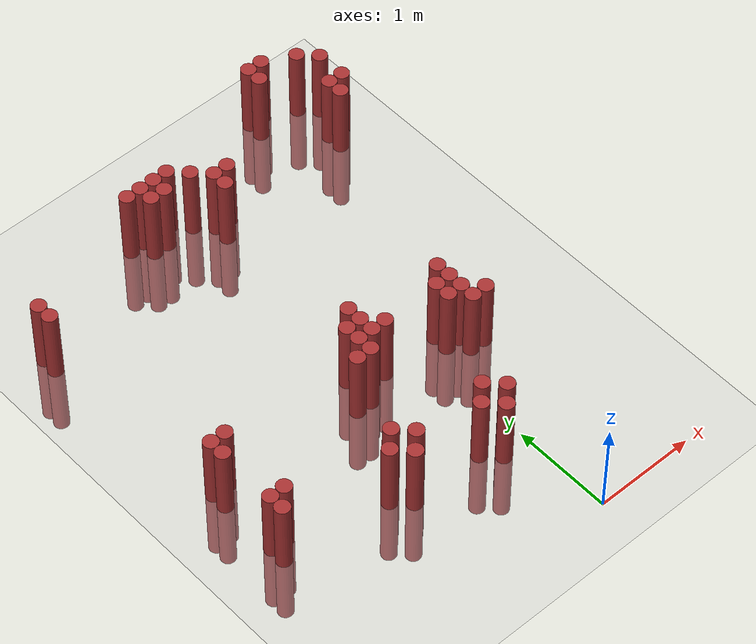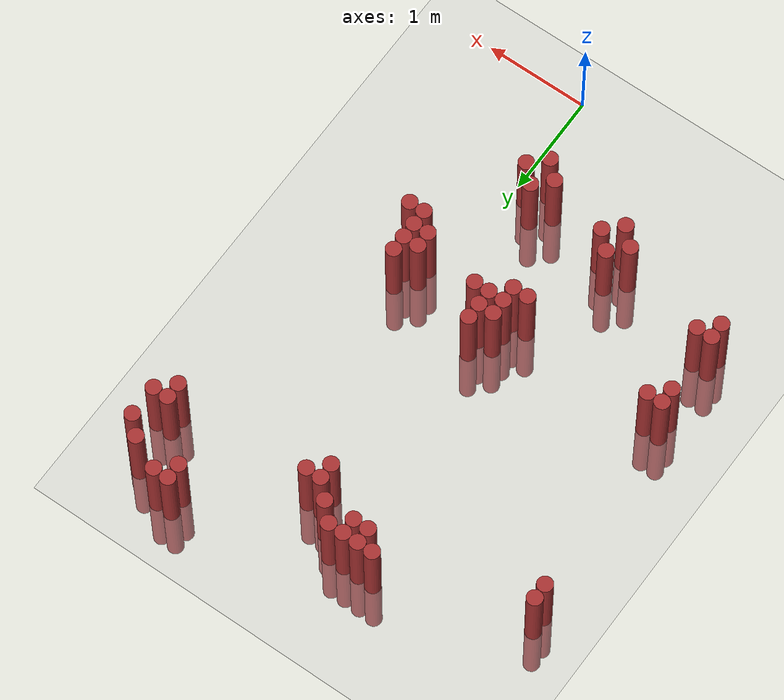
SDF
<sdf version="1.6">
 <world name="default">
  <model name="ground_plane">
   <static>1</static>
   <link name="link">
    <collision name="collision">
     <geometry><plane><normal>0 0 1</normal><size>100 100</size></plane></geometry>
     <surface><friction><ode><mu>100</mu><mu2>50</mu2></ode></friction></surface>
    </collision>
    <visual name="visual">
     <cast_shadows>0</cast_shadows>
     <geometry><plane><normal>0 0 1</normal><size>100 100</size></plane></geometry>
     <material>
      <script><uri>file://media/materials/scripts/gazebo.material</uri><name>Gazebo/Grey</name></script>
     </material>
    </visual>
   </link>
  </model>
  <model name="unit_cylinder_298">
   <static>1</static>
   <pose>-2.525000 4.225000 0.000000 0.000000 0.000000 0.000000</pose>
   <link name="link">
    <inertial>
     <mass>1</mass>
     <inertia><ixx>0.145833</ixx><ixy>0</ixy><ixz>0</ixz><iyy>0.145833</iyy><iyz>0</iyz><izz>0.125</izz></inertia>
    </inertial>
    <collision name="collision">
     <geometry><cylinder><radius>0.075000</radius><length>1.5</length></cylinder></geometry>
    </collision>
    <visual name="visual">
     <geometry><cylinder><radius>0.075000</radius><length>1.5</length></cylinder></geometry>
     <material>
      <ambient>0.648000 0.192000 0.192000 1</ambient>
      <diffuse>0.648000 0.192000 0.192000 1</diffuse>
     </material>
     <material>
      <script><name>Gazebo/Grey</name><uri>file://media/materials/scripts/gazebo.material</uri></script>
     </material>
    </visual>
   </link>
  </model>
  <model name="unit_cylinder_299">
   <static>1</static>
   <pose>-2.525000 4.375000 0.000000 0.000000 0.000000 0.000000</pose>
   <link name="link">
    <inertial>
     <mass>1</mass>
     <inertia><ixx>0.145833</ixx><ixy>0</ixy><ixz>0</ixz><iyy>0.145833</iyy><iyz>0</iyz><izz>0.125</izz></inertia>
    </inertial>
    <collision name="collision">
     <geometry><cylinder><radius>0.075000</radius><length>1.5</length></cylinder></geometry>
    </collision>
    <visual name="visual">
     <geometry><cylinder><radius>0.075000</radius><length>1.5</length></cylinder></geometry>
     <material>
      <ambient>0.648000 0.192000 0.192000 1</ambient>
      <diffuse>0.648000 0.192000 0.192000 1</diffuse>
     </material>
     <material>
      <script><name>Gazebo/Grey</name><uri>file://media/materials/scripts/gazebo.material</uri></script>
     </material>
    </visual>
   </link>
  </model>
  <model name="unit_cylinder_304">
   <static>1</static>
   <pose>-2.375000 1.375000 0.000000 0.000000 0.000000 0.000000</pose>
   <link name="link">
    <inertial>
     <mass>1</mass>
     <inertia><ixx>0.145833</ixx><ixy>0</ixy><ixz>0</ixz><iyy>0.145833</iyy><iyz>0</iyz><izz>0.125</izz></inertia>
    </inertial>
    <collision name="collision">
     <geometry><cylinder><radius>0.075000</radius><length>1.5</length></cylinder></geometry>
    </collision>
    <visual name="visual">
     <geometry><cylinder><radius>0.075000</radius><length>1.5</length></cylinder></geometry>
     <material>
      <ambient>0.648000 0.192000 0.192000 1</ambient>
      <diffuse>0.648000 0.192000 0.192000 1</diffuse>
     </material>
     <material>
      <script><name>Gazebo/Grey</name><uri>file://media/materials/scripts/gazebo.material</uri></script>
     </material>
    </visual>
   </link>
  </model>
  <model name="unit_cylinder_305">
   <static>1</static>
   <pose>-2.375000 1.525000 0.000000 0.000000 0.000000 0.000000</pose>
   <link name="link">
    <inertial>
     <mass>1</mass>
     <inertia><ixx>0.145833</ixx><ixy>0</ixy><ixz>0</ixz><iyy>0.145833</iyy><iyz>0</iyz><izz>0.125</izz></inertia>
    </inertial>
    <collision name="collision">
     <geometry><cylinder><radius>0.075000</radius><length>1.5</length></cylinder></geometry>
    </collision>
    <visual name="visual">
     <geometry><cylinder><radius>0.075000</radius><length>1.5</length></cylinder></geometry>
     <material>
      <ambient>0.648000 0.192000 0.192000 1</ambient>
      <diffuse>0.648000 0.192000 0.192000 1</diffuse>
     </material>
     <material>
      <script><name>Gazebo/Grey</name><uri>file://media/materials/scripts/gazebo.material</uri></script>
     </material>
    </visual>
   </link>
  </model>
  <model name="unit_cylinder_306">
   <static>1</static>
   <pose>-2.375000 2.125000 0.000000 0.000000 0.000000 0.000000</pose>
   <link name="link">
    <inertial>
     <mass>1</mass>
     <inertia><ixx>0.145833</ixx><ixy>0</ixy><ixz>0</ixz><iyy>0.145833</iyy><iyz>0</iyz><izz>0.125</izz></inertia>
    </inertial>
    <collision name="collision">
     <geometry><cylinder><radius>0.075000</radius><length>1.5</length></cylinder></geometry>
    </collision>
    <visual name="visual">
     <geometry><cylinder><radius>0.075000</radius><length>1.5</length></cylinder></geometry>
     <material>
      <ambient>0.648000 0.192000 0.192000 1</ambient>
      <diffuse>0.648000 0.192000 0.192000 1</diffuse>
     </material>
     <material>
      <script><name>Gazebo/Grey</name><uri>file://media/materials/scripts/gazebo.material</uri></script>
     </material>
    </visual>
   </link>
  </model>
  <model name="unit_cylinder_307">
   <static>1</static>
   <pose>-2.375000 2.275000 0.000000 0.000000 0.000000 0.000000</pose>
   <link name="link">
    <inertial>
     <mass>1</mass>
     <inertia><ixx>0.145833</ixx><ixy>0</ixy><ixz>0</ixz><iyy>0.145833</iyy><iyz>0</iyz><izz>0.125</izz></inertia>
    </inertial>
    <collision name="collision">
     <geometry><cylinder><radius>0.075000</radius><length>1.5</length></cylinder></geometry>
    </collision>
    <visual name="visual">
     <geometry><cylinder><radius>0.075000</radius><length>1.5</length></cylinder></geometry>
     <material>
      <ambient>0.648000 0.192000 0.192000 1</ambient>
      <diffuse>0.648000 0.192000 0.192000 1</diffuse>
     </material>
     <material>
      <script><name>Gazebo/Grey</name><uri>file://media/materials/scripts/gazebo.material</uri></script>
     </material>
    </visual>
   </link>
  </model>
  <model name="unit_cylinder_311">
   <static>1</static>
   <pose>-2.225000 1.525000 0.000000 0.000000 0.000000 0.000000</pose>
   <link name="link">
    <inertial>
     <mass>1</mass>
     <inertia><ixx>0.145833</ixx><ixy>0</ixy><ixz>0</ixz><iyy>0.145833</iyy><iyz>0</iyz><izz>0.125</izz></inertia>
    </inertial>
    <collision name="collision">
     <geometry><cylinder><radius>0.075000</radius><length>1.5</length></cylinder></geometry>
    </collision>
    <visual name="visual">
     <geometry><cylinder><radius>0.075000</radius><length>1.5</length></cylinder></geometry>
     <material>
      <ambient>0.648000 0.192000 0.192000 1</ambient>
      <diffuse>0.648000 0.192000 0.192000 1</diffuse>
     </material>
     <material>
      <script><name>Gazebo/Grey</name><uri>file://media/materials/scripts/gazebo.material</uri></script>
     </material>
    </visual>
   </link>
  </model>
  <model name="unit_cylinder_312">
   <static>1</static>
   <pose>-2.225000 2.275000 0.000000 0.000000 0.000000 0.000000</pose>
   <link name="link">
    <inertial>
     <mass>1</mass>
     <inertia><ixx>0.145833</ixx><ixy>0</ixy><ixz>0</ixz><iyy>0.145833</iyy><iyz>0</iyz><izz>0.125</izz></inertia>
    </inertial>
    <collision name="collision">
     <geometry><cylinder><radius>0.075000</radius><length>1.5</length></cylinder></geometry>
    </collision>
    <visual name="visual">
     <geometry><cylinder><radius>0.075000</radius><length>1.5</length></cylinder></geometry>
     <material>
      <ambient>0.648000 0.192000 0.192000 1</ambient>
      <diffuse>0.648000 0.192000 0.192000 1</diffuse>
     </material>
     <material>
      <script><name>Gazebo/Grey</name><uri>file://media/materials/scripts/gazebo.material</uri></script>
     </material>
    </visual>
   </link>
  </model>
  <model name="unit_cylinder_321">
   <static>1</static>
   <pose>-1.325000 1.225000 0.000000 0.000000 0.000000 0.000000</pose>
   <link name="link">
    <inertial>
     <mass>1</mass>
     <inertia><ixx>0.145833</ixx><ixy>0</ixy><ixz>0</ixz><iyy>0.145833</iyy><iyz>0</iyz><izz>0.125</izz></inertia>
    </inertial>
    <collision name="collision">
     <geometry><cylinder><radius>0.075000</radius><length>1.5</length></cylinder></geometry>
    </collision>
    <visual name="visual">
     <geometry><cylinder><radius>0.075000</radius><length>1.5</length></cylinder></geometry>
     <material>
      <ambient>0.648000 0.192000 0.192000 1</ambient>
      <diffuse>0.648000 0.192000 0.192000 1</diffuse>
     </material>
     <material>
      <script><name>Gazebo/Grey</name><uri>file://media/materials/scripts/gazebo.material</uri></script>
     </material>
    </visual>
   </link>
  </model>
  <model name="unit_cylinder_323">
   <static>1</static>
   <pose>-1.175000 1.075000 0.000000 0.000000 0.000000 0.000000</pose>
   <link name="link">
    <inertial>
     <mass>1</mass>
     <inertia><ixx>0.145833</ixx><ixy>0</ixy><ixz>0</ixz><iyy>0.145833</iyy><iyz>0</iyz><izz>0.125</izz></inertia>
    </inertial>
    <collision name="collision">
     <geometry><cylinder><radius>0.075000</radius><length>1.5</length></cylinder></geometry>
    </collision>
    <visual name="visual">
     <geometry><cylinder><radius>0.075000</radius><length>1.5</length></cylinder></geometry>
     <material>
      <ambient>0.648000 0.192000 0.192000 1</ambient>
      <diffuse>0.648000 0.192000 0.192000 1</diffuse>
     </material>
     <material>
      <script><name>Gazebo/Grey</name><uri>file://media/materials/scripts/gazebo.material</uri></script>
     </material>
    </visual>
   </link>
  </model>
  <model name="unit_cylinder_324">
   <static>1</static>
   <pose>-1.175000 1.375000 0.000000 0.000000 0.000000 0.000000</pose>
   <link name="link">
    <inertial>
     <mass>1</mass>
     <inertia><ixx>0.145833</ixx><ixy>0</ixy><ixz>0</ixz><iyy>0.145833</iyy><iyz>0</iyz><izz>0.125</izz></inertia>
    </inertial>
    <collision name="collision">
     <geometry><cylinder><radius>0.075000</radius><length>1.5</length></cylinder></geometry>
    </collision>
    <visual name="visual">
     <geometry><cylinder><radius>0.075000</radius><length>1.5</length></cylinder></geometry>
     <material>
      <ambient>0.648000 0.192000 0.192000 1</ambient>
      <diffuse>0.648000 0.192000 0.192000 1</diffuse>
     </material>
     <material>
      <script><name>Gazebo/Grey</name><uri>file://media/materials/scripts/gazebo.material</uri></script>
     </material>
    </visual>
   </link>
  </model>
  <model name="unit_cylinder_325">
   <static>1</static>
   <pose>-1.175000 4.825000 0.000000 0.000000 0.000000 0.000000</pose>
   <link name="link">
    <inertial>
     <mass>1</mass>
     <inertia><ixx>0.145833</ixx><ixy>0</ixy><ixz>0</ixz><iyy>0.145833</iyy><iyz>0</iyz><izz>0.125</izz></inertia>
    </inertial>
    <collision name="collision">
     <geometry><cylinder><radius>0.075000</radius><length>1.5</length></cylinder></geometry>
    </collision>
    <visual name="visual">
     <geometry><cylinder><radius>0.075000</radius><length>1.5</length></cylinder></geometry>
     <material>
      <ambient>0.648000 0.192000 0.192000 1</ambient>
      <diffuse>0.648000 0.192000 0.192000 1</diffuse>
     </material>
     <material>
      <script><name>Gazebo/Grey</name><uri>file://media/materials/scripts/gazebo.material</uri></script>
     </material>
    </visual>
   </link>
  </model>
  <model name="unit_cylinder_328">
   <static>1</static>
   <pose>-1.025000 1.225000 0.000000 0.000000 0.000000 0.000000</pose>
   <link name="link">
    <inertial>
     <mass>1</mass>
     <inertia><ixx>0.145833</ixx><ixy>0</ixy><ixz>0</ixz><iyy>0.145833</iyy><iyz>0</iyz><izz>0.125</izz></inertia>
    </inertial>
    <collision name="collision">
     <geometry><cylinder><radius>0.075000</radius><length>1.5</length></cylinder></geometry>
    </collision>
    <visual name="visual">
     <geometry><cylinder><radius>0.075000</radius><length>1.5</length></cylinder></geometry>
     <material>
      <ambient>0.648000 0.192000 0.192000 1</ambient>
      <diffuse>0.648000 0.192000 0.192000 1</diffuse>
     </material>
     <material>
      <script><name>Gazebo/Grey</name><uri>file://media/materials/scripts/gazebo.material</uri></script>
     </material>
    </visual>
   </link>
  </model>
  <model name="unit_cylinder_329">
   <static>1</static>
   <pose>-1.025000 4.675000 0.000000 0.000000 0.000000 0.000000</pose>
   <link name="link">
    <inertial>
     <mass>1</mass>
     <inertia><ixx>0.145833</ixx><ixy>0</ixy><ixz>0</ixz><iyy>0.145833</iyy><iyz>0</iyz><izz>0.125</izz></inertia>
    </inertial>
    <collision name="collision">
     <geometry><cylinder><radius>0.075000</radius><length>1.5</length></cylinder></geometry>
    </collision>
    <visual name="visual">
     <geometry><cylinder><radius>0.075000</radius><length>1.5</length></cylinder></geometry>
     <material>
      <ambient>0.648000 0.192000 0.192000 1</ambient>
      <diffuse>0.648000 0.192000 0.192000 1</diffuse>
     </material>
     <material>
      <script><name>Gazebo/Grey</name><uri>file://media/materials/scripts/gazebo.material</uri></script>
     </material>
    </visual>
   </link>
  </model>
  <model name="unit_cylinder_330">
   <static>1</static>
   <pose>-1.025000 4.825000 0.000000 0.000000 0.000000 0.000000</pose>
   <link name="link">
    <inertial>
     <mass>1</mass>
     <inertia><ixx>0.145833</ixx><ixy>0</ixy><ixz>0</ixz><iyy>0.145833</iyy><iyz>0</iyz><izz>0.125</izz></inertia>
    </inertial>
    <collision name="collision">
     <geometry><cylinder><radius>0.075000</radius><length>1.5</length></cylinder></geometry>
    </collision>
    <visual name="visual">
     <geometry><cylinder><radius>0.075000</radius><length>1.5</length></cylinder></geometry>
     <material>
      <ambient>0.648000 0.192000 0.192000 1</ambient>
      <diffuse>0.648000 0.192000 0.192000 1</diffuse>
     </material>
     <material>
      <script><name>Gazebo/Grey</name><uri>file://media/materials/scripts/gazebo.material</uri></script>
     </material>
    </visual>
   </link>
  </model>
  <model name="unit_cylinder_331">
   <static>1</static>
   <pose>-0.875000 2.125000 0.000000 0.000000 0.000000 0.000000</pose>
   <link name="link">
    <inertial>
     <mass>1</mass>
     <inertia><ixx>0.145833</ixx><ixy>0</ixy><ixz>0</ixz><iyy>0.145833</iyy><iyz>0</iyz><izz>0.125</izz></inertia>
    </inertial>
    <collision name="collision">
     <geometry><cylinder><radius>0.075000</radius><length>1.5</length></cylinder></geometry>
    </collision>
    <visual name="visual">
     <geometry><cylinder><radius>0.075000</radius><length>1.5</length></cylinder></geometry>
     <material>
      <ambient>0.648000 0.192000 0.192000 1</ambient>
      <diffuse>0.648000 0.192000 0.192000 1</diffuse>
     </material>
     <material>
      <script><name>Gazebo/Grey</name><uri>file://media/materials/scripts/gazebo.material</uri></script>
     </material>
    </visual>
   </link>
  </model>
  <model name="unit_cylinder_332">
   <static>1</static>
   <pose>-0.875000 4.675000 0.000000 0.000000 0.000000 0.000000</pose>
   <link name="link">
    <inertial>
     <mass>1</mass>
     <inertia><ixx>0.145833</ixx><ixy>0</ixy><ixz>0</ixz><iyy>0.145833</iyy><iyz>0</iyz><izz>0.125</izz></inertia>
    </inertial>
    <collision name="collision">
     <geometry><cylinder><radius>0.075000</radius><length>1.5</length></cylinder></geometry>
    </collision>
    <visual name="visual">
     <geometry><cylinder><radius>0.075000</radius><length>1.5</length></cylinder></geometry>
     <material>
      <ambient>0.648000 0.192000 0.192000 1</ambient>
      <diffuse>0.648000 0.192000 0.192000 1</diffuse>
     </material>
     <material>
      <script><name>Gazebo/Grey</name><uri>file://media/materials/scripts/gazebo.material</uri></script>
     </material>
    </visual>
   </link>
  </model>
  <model name="unit_cylinder_333">
   <static>1</static>
   <pose>-0.875000 4.825000 0.000000 0.000000 0.000000 0.000000</pose>
   <link name="link">
    <inertial>
     <mass>1</mass>
     <inertia><ixx>0.145833</ixx><ixy>0</ixy><ixz>0</ixz><iyy>0.145833</iyy><iyz>0</iyz><izz>0.125</izz></inertia>
    </inertial>
    <collision name="collision">
     <geometry><cylinder><radius>0.075000</radius><length>1.5</length></cylinder></geometry>
    </collision>
    <visual name="visual">
     <geometry><cylinder><radius>0.075000</radius><length>1.5</length></cylinder></geometry>
     <material>
      <ambient>0.648000 0.192000 0.192000 1</ambient>
      <diffuse>0.648000 0.192000 0.192000 1</diffuse>
     </material>
     <material>
      <script><name>Gazebo/Grey</name><uri>file://media/materials/scripts/gazebo.material</uri></script>
     </material>
    </visual>
   </link>
  </model>
  <model name="unit_cylinder_339">
   <static>1</static>
   <pose>-0.725000 2.125000 0.000000 0.000000 0.000000 0.000000</pose>
   <link name="link">
    <inertial>
     <mass>1</mass>
     <inertia><ixx>0.145833</ixx><ixy>0</ixy><ixz>0</ixz><iyy>0.145833</iyy><iyz>0</iyz><izz>0.125</izz></inertia>
    </inertial>
    <collision name="collision">
     <geometry><cylinder><radius>0.075000</radius><length>1.5</length></cylinder></geometry>
    </collision>
    <visual name="visual">
     <geometry><cylinder><radius>0.075000</radius><length>1.5</length></cylinder></geometry>
     <material>
      <ambient>0.648000 0.192000 0.192000 1</ambient>
      <diffuse>0.648000 0.192000 0.192000 1</diffuse>
     </material>
     <material>
      <script><name>Gazebo/Grey</name><uri>file://media/materials/scripts/gazebo.material</uri></script>
     </material>
    </visual>
   </link>
  </model>
  <model name="unit_cylinder_340">
   <static>1</static>
   <pose>-0.725000 2.275000 0.000000 0.000000 0.000000 0.000000</pose>
   <link name="link">
    <inertial>
     <mass>1</mass>
     <inertia><ixx>0.145833</ixx><ixy>0</ixy><ixz>0</ixz><iyy>0.145833</iyy><iyz>0</iyz><izz>0.125</izz></inertia>
    </inertial>
    <collision name="collision">
     <geometry><cylinder><radius>0.075000</radius><length>1.5</length></cylinder></geometry>
    </collision>
    <visual name="visual">
     <geometry><cylinder><radius>0.075000</radius><length>1.5</length></cylinder></geometry>
     <material>
      <ambient>0.648000 0.192000 0.192000 1</ambient>
      <diffuse>0.648000 0.192000 0.192000 1</diffuse>
     </material>
     <material>
      <script><name>Gazebo/Grey</name><uri>file://media/materials/scripts/gazebo.material</uri></script>
     </material>
    </visual>
   </link>
  </model>
  <model name="unit_cylinder_341">
   <static>1</static>
   <pose>-0.725000 2.425000 0.000000 0.000000 0.000000 0.000000</pose>
   <link name="link">
    <inertial>
     <mass>1</mass>
     <inertia><ixx>0.145833</ixx><ixy>0</ixy><ixz>0</ixz><iyy>0.145833</iyy><iyz>0</iyz><izz>0.125</izz></inertia>
    </inertial>
    <collision name="collision">
     <geometry><cylinder><radius>0.075000</radius><length>1.5</length></cylinder></geometry>
    </collision>
    <visual name="visual">
     <geometry><cylinder><radius>0.075000</radius><length>1.5</length></cylinder></geometry>
     <material>
      <ambient>0.648000 0.192000 0.192000 1</ambient>
      <diffuse>0.648000 0.192000 0.192000 1</diffuse>
     </material>
     <material>
      <script><name>Gazebo/Grey</name><uri>file://media/materials/scripts/gazebo.material</uri></script>
     </material>
    </visual>
   </link>
  </model>
  <model name="unit_cylinder_342">
   <static>1</static>
   <pose>-0.725000 4.825000 0.000000 0.000000 0.000000 0.000000</pose>
   <link name="link">
    <inertial>
     <mass>1</mass>
     <inertia><ixx>0.145833</ixx><ixy>0</ixy><ixz>0</ixz><iyy>0.145833</iyy><iyz>0</iyz><izz>0.125</izz></inertia>
    </inertial>
    <collision name="collision">
     <geometry><cylinder><radius>0.075000</radius><length>1.5</length></cylinder></geometry>
    </collision>
    <visual name="visual">
     <geometry><cylinder><radius>0.075000</radius><length>1.5</length></cylinder></geometry>
     <material>
      <ambient>0.648000 0.192000 0.192000 1</ambient>
      <diffuse>0.648000 0.192000 0.192000 1</diffuse>
     </material>
     <material>
      <script><name>Gazebo/Grey</name><uri>file://media/materials/scripts/gazebo.material</uri></script>
     </material>
    </visual>
   </link>
  </model>
  <model name="unit_cylinder_347">
   <static>1</static>
   <pose>-0.575000 2.275000 0.000000 0.000000 0.000000 0.000000</pose>
   <link name="link">
    <inertial>
     <mass>1</mass>
     <inertia><ixx>0.145833</ixx><ixy>0</ixy><ixz>0</ixz><iyy>0.145833</iyy><iyz>0</iyz><izz>0.125</izz></inertia>
    </inertial>
    <collision name="collision">
     <geometry><cylinder><radius>0.075000</radius><length>1.5</length></cylinder></geometry>
    </collision>
    <visual name="visual">
     <geometry><cylinder><radius>0.075000</radius><length>1.5</length></cylinder></geometry>
     <material>
      <ambient>0.648000 0.192000 0.192000 1</ambient>
      <diffuse>0.648000 0.192000 0.192000 1</diffuse>
     </material>
     <material>
      <script><name>Gazebo/Grey</name><uri>file://media/materials/scripts/gazebo.material</uri></script>
     </material>
    </visual>
   </link>
  </model>
  <model name="unit_cylinder_348">
   <static>1</static>
   <pose>-0.575000 2.425000 0.000000 0.000000 0.000000 0.000000</pose>
   <link name="link">
    <inertial>
     <mass>1</mass>
     <inertia><ixx>0.145833</ixx><ixy>0</ixy><ixz>0</ixz><iyy>0.145833</iyy><iyz>0</iyz><izz>0.125</izz></inertia>
    </inertial>
    <collision name="collision">
     <geometry><cylinder><radius>0.075000</radius><length>1.5</length></cylinder></geometry>
    </collision>
    <visual name="visual">
     <geometry><cylinder><radius>0.075000</radius><length>1.5</length></cylinder></geometry>
     <material>
      <ambient>0.648000 0.192000 0.192000 1</ambient>
      <diffuse>0.648000 0.192000 0.192000 1</diffuse>
     </material>
     <material>
      <script><name>Gazebo/Grey</name><uri>file://media/materials/scripts/gazebo.material</uri></script>
     </material>
    </visual>
   </link>
  </model>
  <model name="unit_cylinder_349">
   <static>1</static>
   <pose>-0.575000 2.575000 0.000000 0.000000 0.000000 0.000000</pose>
   <link name="link">
    <inertial>
     <mass>1</mass>
     <inertia><ixx>0.145833</ixx><ixy>0</ixy><ixz>0</ixz><iyy>0.145833</iyy><iyz>0</iyz><izz>0.125</izz></inertia>
    </inertial>
    <collision name="collision">
     <geometry><cylinder><radius>0.075000</radius><length>1.5</length></cylinder></geometry>
    </collision>
    <visual name="visual">
     <geometry><cylinder><radius>0.075000</radius><length>1.5</length></cylinder></geometry>
     <material>
      <ambient>0.648000 0.192000 0.192000 1</ambient>
      <diffuse>0.648000 0.192000 0.192000 1</diffuse>
     </material>
     <material>
      <script><name>Gazebo/Grey</name><uri>file://media/materials/scripts/gazebo.material</uri></script>
     </material>
    </visual>
   </link>
  </model>
  <model name="unit_cylinder_350">
   <static>1</static>
   <pose>-0.575000 4.675000 0.000000 0.000000 0.000000 0.000000</pose>
   <link name="link">
    <inertial>
     <mass>1</mass>
     <inertia><ixx>0.145833</ixx><ixy>0</ixy><ixz>0</ixz><iyy>0.145833</iyy><iyz>0</iyz><izz>0.125</izz></inertia>
    </inertial>
    <collision name="collision">
     <geometry><cylinder><radius>0.075000</radius><length>1.5</length></cylinder></geometry>
    </collision>
    <visual name="visual">
     <geometry><cylinder><radius>0.075000</radius><length>1.5</length></cylinder></geometry>
     <material>
      <ambient>0.648000 0.192000 0.192000 1</ambient>
      <diffuse>0.648000 0.192000 0.192000 1</diffuse>
     </material>
     <material>
      <script><name>Gazebo/Grey</name><uri>file://media/materials/scripts/gazebo.material</uri></script>
     </material>
    </visual>
   </link>
  </model>
  <model name="unit_cylinder_353">
   <static>1</static>
   <pose>-0.425000 1.075000 0.000000 0.000000 0.000000 0.000000</pose>
   <link name="link">
    <inertial>
     <mass>1</mass>
     <inertia><ixx>0.145833</ixx><ixy>0</ixy><ixz>0</ixz><iyy>0.145833</iyy><iyz>0</iyz><izz>0.125</izz></inertia>
    </inertial>
    <collision name="collision">
     <geometry><cylinder><radius>0.075000</radius><length>1.5</length></cylinder></geometry>
    </collision>
    <visual name="visual">
     <geometry><cylinder><radius>0.075000</radius><length>1.5</length></cylinder></geometry>
     <material>
      <ambient>0.648000 0.192000 0.192000 1</ambient>
      <diffuse>0.648000 0.192000 0.192000 1</diffuse>
     </material>
     <material>
      <script><name>Gazebo/Grey</name><uri>file://media/materials/scripts/gazebo.material</uri></script>
     </material>
    </visual>
   </link>
  </model>
  <model name="unit_cylinder_354">
   <static>1</static>
   <pose>-0.425000 2.275000 0.000000 0.000000 0.000000 0.000000</pose>
   <link name="link">
    <inertial>
     <mass>1</mass>
     <inertia><ixx>0.145833</ixx><ixy>0</ixy><ixz>0</ixz><iyy>0.145833</iyy><iyz>0</iyz><izz>0.125</izz></inertia>
    </inertial>
    <collision name="collision">
     <geometry><cylinder><radius>0.075000</radius><length>1.5</length></cylinder></geometry>
    </collision>
    <visual name="visual">
     <geometry><cylinder><radius>0.075000</radius><length>1.5</length></cylinder></geometry>
     <material>
      <ambient>0.648000 0.192000 0.192000 1</ambient>
      <diffuse>0.648000 0.192000 0.192000 1</diffuse>
     </material>
     <material>
      <script><name>Gazebo/Grey</name><uri>file://media/materials/scripts/gazebo.material</uri></script>
     </material>
    </visual>
   </link>
  </model>
  <model name="unit_cylinder_355">
   <static>1</static>
   <pose>-0.425000 4.375000 0.000000 0.000000 0.000000 0.000000</pose>
   <link name="link">
    <inertial>
     <mass>1</mass>
     <inertia><ixx>0.145833</ixx><ixy>0</ixy><ixz>0</ixz><iyy>0.145833</iyy><iyz>0</iyz><izz>0.125</izz></inertia>
    </inertial>
    <collision name="collision">
     <geometry><cylinder><radius>0.075000</radius><length>1.5</length></cylinder></geometry>
    </collision>
    <visual name="visual">
     <geometry><cylinder><radius>0.075000</radius><length>1.5</length></cylinder></geometry>
     <material>
      <ambient>0.648000 0.192000 0.192000 1</ambient>
      <diffuse>0.648000 0.192000 0.192000 1</diffuse>
     </material>
     <material>
      <script><name>Gazebo/Grey</name><uri>file://media/materials/scripts/gazebo.material</uri></script>
     </material>
    </visual>
   </link>
  </model>
  <model name="unit_cylinder_356">
   <static>1</static>
   <pose>-0.425000 4.525000 0.000000 0.000000 0.000000 0.000000</pose>
   <link name="link">
    <inertial>
     <mass>1</mass>
     <inertia><ixx>0.145833</ixx><ixy>0</ixy><ixz>0</ixz><iyy>0.145833</iyy><iyz>0</iyz><izz>0.125</izz></inertia>
    </inertial>
    <collision name="collision">
     <geometry><cylinder><radius>0.075000</radius><length>1.5</length></cylinder></geometry>
    </collision>
    <visual name="visual">
     <geometry><cylinder><radius>0.075000</radius><length>1.5</length></cylinder></geometry>
     <material>
      <ambient>0.648000 0.192000 0.192000 1</ambient>
      <diffuse>0.648000 0.192000 0.192000 1</diffuse>
     </material>
     <material>
      <script><name>Gazebo/Grey</name><uri>file://media/materials/scripts/gazebo.material</uri></script>
     </material>
    </visual>
   </link>
  </model>
  <model name="unit_cylinder_357">
   <static>1</static>
   <pose>-0.275000 0.925000 0.000000 0.000000 0.000000 0.000000</pose>
   <link name="link">
    <inertial>
     <mass>1</mass>
     <inertia><ixx>0.145833</ixx><ixy>0</ixy><ixz>0</ixz><iyy>0.145833</iyy><iyz>0</iyz><izz>0.125</izz></inertia>
    </inertial>
    <collision name="collision">
     <geometry><cylinder><radius>0.075000</radius><length>1.5</length></cylinder></geometry>
    </collision>
    <visual name="visual">
     <geometry><cylinder><radius>0.075000</radius><length>1.5</length></cylinder></geometry>
     <material>
      <ambient>0.648000 0.192000 0.192000 1</ambient>
      <diffuse>0.648000 0.192000 0.192000 1</diffuse>
     </material>
     <material>
      <script><name>Gazebo/Grey</name><uri>file://media/materials/scripts/gazebo.material</uri></script>
     </material>
    </visual>
   </link>
  </model>
  <model name="unit_cylinder_358">
   <static>1</static>
   <pose>-0.275000 1.225000 0.000000 0.000000 0.000000 0.000000</pose>
   <link name="link">
    <inertial>
     <mass>1</mass>
     <inertia><ixx>0.145833</ixx><ixy>0</ixy><ixz>0</ixz><iyy>0.145833</iyy><iyz>0</iyz><izz>0.125</izz></inertia>
    </inertial>
    <collision name="collision">
     <geometry><cylinder><radius>0.075000</radius><length>1.5</length></cylinder></geometry>
    </collision>
    <visual name="visual">
     <geometry><cylinder><radius>0.075000</radius><length>1.5</length></cylinder></geometry>
     <material>
      <ambient>0.648000 0.192000 0.192000 1</ambient>
      <diffuse>0.648000 0.192000 0.192000 1</diffuse>
     </material>
     <material>
      <script><name>Gazebo/Grey</name><uri>file://media/materials/scripts/gazebo.material</uri></script>
     </material>
    </visual>
   </link>
  </model>
  <model name="unit_cylinder_359">
   <static>1</static>
   <pose>-0.275000 4.525000 0.000000 0.000000 0.000000 0.000000</pose>
   <link name="link">
    <inertial>
     <mass>1</mass>
     <inertia><ixx>0.145833</ixx><ixy>0</ixy><ixz>0</ixz><iyy>0.145833</iyy><iyz>0</iyz><izz>0.125</izz></inertia>
    </inertial>
    <collision name="collision">
     <geometry><cylinder><radius>0.075000</radius><length>1.5</length></cylinder></geometry>
    </collision>
    <visual name="visual">
     <geometry><cylinder><radius>0.075000</radius><length>1.5</length></cylinder></geometry>
     <material>
      <ambient>0.648000 0.192000 0.192000 1</ambient>
      <diffuse>0.648000 0.192000 0.192000 1</diffuse>
     </material>
     <material>
      <script><name>Gazebo/Grey</name><uri>file://media/materials/scripts/gazebo.material</uri></script>
     </material>
    </visual>
   </link>
  </model>
  <model name="unit_cylinder_360">
   <static>1</static>
   <pose>-0.125000 1.075000 0.000000 0.000000 0.000000 0.000000</pose>
   <link name="link">
    <inertial>
     <mass>1</mass>
     <inertia><ixx>0.145833</ixx><ixy>0</ixy><ixz>0</ixz><iyy>0.145833</iyy><iyz>0</iyz><izz>0.125</izz></inertia>
    </inertial>
    <collision name="collision">
     <geometry><cylinder><radius>0.075000</radius><length>1.5</length></cylinder></geometry>
    </collision>
    <visual name="visual">
     <geometry><cylinder><radius>0.075000</radius><length>1.5</length></cylinder></geometry>
     <material>
      <ambient>0.648000 0.192000 0.192000 1</ambient>
      <diffuse>0.648000 0.192000 0.192000 1</diffuse>
     </material>
     <material>
      <script><name>Gazebo/Grey</name><uri>file://media/materials/scripts/gazebo.material</uri></script>
     </material>
    </visual>
   </link>
  </model>
  <model name="unit_cylinder_369">
   <static>1</static>
   <pose>0.175000 2.125000 0.000000 0.000000 0.000000 0.000000</pose>
   <link name="link">
    <inertial>
     <mass>1</mass>
     <inertia><ixx>0.145833</ixx><ixy>0</ixy><ixz>0</ixz><iyy>0.145833</iyy><iyz>0</iyz><izz>0.125</izz></inertia>
    </inertial>
    <collision name="collision">
     <geometry><cylinder><radius>0.075000</radius><length>1.5</length></cylinder></geometry>
    </collision>
    <visual name="visual">
     <geometry><cylinder><radius>0.075000</radius><length>1.5</length></cylinder></geometry>
     <material>
      <ambient>0.648000 0.192000 0.192000 1</ambient>
      <diffuse>0.648000 0.192000 0.192000 1</diffuse>
     </material>
     <material>
      <script><name>Gazebo/Grey</name><uri>file://media/materials/scripts/gazebo.material</uri></script>
     </material>
    </visual>
   </link>
  </model>
  <model name="unit_cylinder_370">
   <static>1</static>
   <pose>0.175000 2.275000 0.000000 0.000000 0.000000 0.000000</pose>
   <link name="link">
    <inertial>
     <mass>1</mass>
     <inertia><ixx>0.145833</ixx><ixy>0</ixy><ixz>0</ixz><iyy>0.145833</iyy><iyz>0</iyz><izz>0.125</izz></inertia>
    </inertial>
    <collision name="collision">
     <geometry><cylinder><radius>0.075000</radius><length>1.5</length></cylinder></geometry>
    </collision>
    <visual name="visual">
     <geometry><cylinder><radius>0.075000</radius><length>1.5</length></cylinder></geometry>
     <material>
      <ambient>0.648000 0.192000 0.192000 1</ambient>
      <diffuse>0.648000 0.192000 0.192000 1</diffuse>
     </material>
     <material>
      <script><name>Gazebo/Grey</name><uri>file://media/materials/scripts/gazebo.material</uri></script>
     </material>
    </visual>
   </link>
  </model>
  <model name="unit_cylinder_376">
   <static>1</static>
   <pose>0.325000 1.975000 0.000000 0.000000 0.000000 0.000000</pose>
   <link name="link">
    <inertial>
     <mass>1</mass>
     <inertia><ixx>0.145833</ixx><ixy>0</ixy><ixz>0</ixz><iyy>0.145833</iyy><iyz>0</iyz><izz>0.125</izz></inertia>
    </inertial>
    <collision name="collision">
     <geometry><cylinder><radius>0.075000</radius><length>1.5</length></cylinder></geometry>
    </collision>
    <visual name="visual">
     <geometry><cylinder><radius>0.075000</radius><length>1.5</length></cylinder></geometry>
     <material>
      <ambient>0.648000 0.192000 0.192000 1</ambient>
      <diffuse>0.648000 0.192000 0.192000 1</diffuse>
     </material>
     <material>
      <script><name>Gazebo/Grey</name><uri>file://media/materials/scripts/gazebo.material</uri></script>
     </material>
    </visual>
   </link>
  </model>
  <model name="unit_cylinder_377">
   <static>1</static>
   <pose>0.325000 2.125000 0.000000 0.000000 0.000000 0.000000</pose>
   <link name="link">
    <inertial>
     <mass>1</mass>
     <inertia><ixx>0.145833</ixx><ixy>0</ixy><ixz>0</ixz><iyy>0.145833</iyy><iyz>0</iyz><izz>0.125</izz></inertia>
    </inertial>
    <collision name="collision">
     <geometry><cylinder><radius>0.075000</radius><length>1.5</length></cylinder></geometry>
    </collision>
    <visual name="visual">
     <geometry><cylinder><radius>0.075000</radius><length>1.5</length></cylinder></geometry>
     <material>
      <ambient>0.648000 0.192000 0.192000 1</ambient>
      <diffuse>0.648000 0.192000 0.192000 1</diffuse>
     </material>
     <material>
      <script><name>Gazebo/Grey</name><uri>file://media/materials/scripts/gazebo.material</uri></script>
     </material>
    </visual>
   </link>
  </model>
  <model name="unit_cylinder_378">
   <static>1</static>
   <pose>0.325000 2.275000 0.000000 0.000000 0.000000 0.000000</pose>
   <link name="link">
    <inertial>
     <mass>1</mass>
     <inertia><ixx>0.145833</ixx><ixy>0</ixy><ixz>0</ixz><iyy>0.145833</iyy><iyz>0</iyz><izz>0.125</izz></inertia>
    </inertial>
    <collision name="collision">
     <geometry><cylinder><radius>0.075000</radius><length>1.5</length></cylinder></geometry>
    </collision>
    <visual name="visual">
     <geometry><cylinder><radius>0.075000</radius><length>1.5</length></cylinder></geometry>
     <material>
      <ambient>0.648000 0.192000 0.192000 1</ambient>
      <diffuse>0.648000 0.192000 0.192000 1</diffuse>
     </material>
     <material>
      <script><name>Gazebo/Grey</name><uri>file://media/materials/scripts/gazebo.material</uri></script>
     </material>
    </visual>
   </link>
  </model>
  <model name="unit_cylinder_379">
   <static>1</static>
   <pose>0.325000 2.425000 0.000000 0.000000 0.000000 0.000000</pose>
   <link name="link">
    <inertial>
     <mass>1</mass>
     <inertia><ixx>0.145833</ixx><ixy>0</ixy><ixz>0</ixz><iyy>0.145833</iyy><iyz>0</iyz><izz>0.125</izz></inertia>
    </inertial>
    <collision name="collision">
     <geometry><cylinder><radius>0.075000</radius><length>1.5</length></cylinder></geometry>
    </collision>
    <visual name="visual">
     <geometry><cylinder><radius>0.075000</radius><length>1.5</length></cylinder></geometry>
     <material>
      <ambient>0.648000 0.192000 0.192000 1</ambient>
      <diffuse>0.648000 0.192000 0.192000 1</diffuse>
     </material>
     <material>
      <script><name>Gazebo/Grey</name><uri>file://media/materials/scripts/gazebo.material</uri></script>
     </material>
    </visual>
   </link>
  </model>
  <model name="unit_cylinder_384">
   <static>1</static>
   <pose>0.475000 1.975000 0.000000 0.000000 0.000000 0.000000</pose>
   <link name="link">
    <inertial>
     <mass>1</mass>
     <inertia><ixx>0.145833</ixx><ixy>0</ixy><ixz>0</ixz><iyy>0.145833</iyy><iyz>0</iyz><izz>0.125</izz></inertia>
    </inertial>
    <collision name="collision">
     <geometry><cylinder><radius>0.075000</radius><length>1.5</length></cylinder></geometry>
    </collision>
    <visual name="visual">
     <geometry><cylinder><radius>0.075000</radius><length>1.5</length></cylinder></geometry>
     <material>
      <ambient>0.648000 0.192000 0.192000 1</ambient>
      <diffuse>0.648000 0.192000 0.192000 1</diffuse>
     </material>
     <material>
      <script><name>Gazebo/Grey</name><uri>file://media/materials/scripts/gazebo.material</uri></script>
     </material>
    </visual>
   </link>
  </model>
  <model name="unit_cylinder_388">
   <static>1</static>
   <pose>0.625000 5.125000 0.000000 0.000000 0.000000 0.000000</pose>
   <link name="link">
    <inertial>
     <mass>1</mass>
     <inertia><ixx>0.145833</ixx><ixy>0</ixy><ixz>0</ixz><iyy>0.145833</iyy><iyz>0</iyz><izz>0.125</izz></inertia>
    </inertial>
    <collision name="collision">
     <geometry><cylinder><radius>0.075000</radius><length>1.5</length></cylinder></geometry>
    </collision>
    <visual name="visual">
     <geometry><cylinder><radius>0.075000</radius><length>1.5</length></cylinder></geometry>
     <material>
      <ambient>0.648000 0.192000 0.192000 1</ambient>
      <diffuse>0.648000 0.192000 0.192000 1</diffuse>
     </material>
     <material>
      <script><name>Gazebo/Grey</name><uri>file://media/materials/scripts/gazebo.material</uri></script>
     </material>
    </visual>
   </link>
  </model>
  <model name="unit_cylinder_389">
   <static>1</static>
   <pose>0.625000 5.275000 0.000000 0.000000 0.000000 0.000000</pose>
   <link name="link">
    <inertial>
     <mass>1</mass>
     <inertia><ixx>0.145833</ixx><ixy>0</ixy><ixz>0</ixz><iyy>0.145833</iyy><iyz>0</iyz><izz>0.125</izz></inertia>
    </inertial>
    <collision name="collision">
     <geometry><cylinder><radius>0.075000</radius><length>1.5</length></cylinder></geometry>
    </collision>
    <visual name="visual">
     <geometry><cylinder><radius>0.075000</radius><length>1.5</length></cylinder></geometry>
     <material>
      <ambient>0.648000 0.192000 0.192000 1</ambient>
      <diffuse>0.648000 0.192000 0.192000 1</diffuse>
     </material>
     <material>
      <script><name>Gazebo/Grey</name><uri>file://media/materials/scripts/gazebo.material</uri></script>
     </material>
    </visual>
   </link>
  </model>
  <model name="unit_cylinder_391">
   <static>1</static>
   <pose>0.775000 5.275000 0.000000 0.000000 0.000000 0.000000</pose>
   <link name="link">
    <inertial>
     <mass>1</mass>
     <inertia><ixx>0.145833</ixx><ixy>0</ixy><ixz>0</ixz><iyy>0.145833</iyy><iyz>0</iyz><izz>0.125</izz></inertia>
    </inertial>
    <collision name="collision">
     <geometry><cylinder><radius>0.075000</radius><length>1.5</length></cylinder></geometry>
    </collision>
    <visual name="visual">
     <geometry><cylinder><radius>0.075000</radius><length>1.5</length></cylinder></geometry>
     <material>
      <ambient>0.648000 0.192000 0.192000 1</ambient>
      <diffuse>0.648000 0.192000 0.192000 1</diffuse>
     </material>
     <material>
      <script><name>Gazebo/Grey</name><uri>file://media/materials/scripts/gazebo.material</uri></script>
     </material>
    </visual>
   </link>
  </model>
  <model name="unit_cylinder_394">
   <static>1</static>
   <pose>1.075000 4.525000 0.000000 0.000000 0.000000 0.000000</pose>
   <link name="link">
    <inertial>
     <mass>1</mass>
     <inertia><ixx>0.145833</ixx><ixy>0</ixy><ixz>0</ixz><iyy>0.145833</iyy><iyz>0</iyz><izz>0.125</izz></inertia>
    </inertial>
    <collision name="collision">
     <geometry><cylinder><radius>0.075000</radius><length>1.5</length></cylinder></geometry>
    </collision>
    <visual name="visual">
     <geometry><cylinder><radius>0.075000</radius><length>1.5</length></cylinder></geometry>
     <material>
      <ambient>0.648000 0.192000 0.192000 1</ambient>
      <diffuse>0.648000 0.192000 0.192000 1</diffuse>
     </material>
     <material>
      <script><name>Gazebo/Grey</name><uri>file://media/materials/scripts/gazebo.material</uri></script>
     </material>
    </visual>
   </link>
  </model>
  <model name="unit_cylinder_395">
   <static>1</static>
   <pose>1.075000 4.675000 0.000000 0.000000 0.000000 0.000000</pose>
   <link name="link">
    <inertial>
     <mass>1</mass>
     <inertia><ixx>0.145833</ixx><ixy>0</ixy><ixz>0</ixz><iyy>0.145833</iyy><iyz>0</iyz><izz>0.125</izz></inertia>
    </inertial>
    <collision name="collision">
     <geometry><cylinder><radius>0.075000</radius><length>1.5</length></cylinder></geometry>
    </collision>
    <visual name="visual">
     <geometry><cylinder><radius>0.075000</radius><length>1.5</length></cylinder></geometry>
     <material>
      <ambient>0.648000 0.192000 0.192000 1</ambient>
      <diffuse>0.648000 0.192000 0.192000 1</diffuse>
     </material>
     <material>
      <script><name>Gazebo/Grey</name><uri>file://media/materials/scripts/gazebo.material</uri></script>
     </material>
    </visual>
   </link>
  </model>
  <model name="unit_cylinder_396">
   <static>1</static>
   <pose>1.075000 5.125000 0.000000 0.000000 0.000000 0.000000</pose>
   <link name="link">
    <inertial>
     <mass>1</mass>
     <inertia><ixx>0.145833</ixx><ixy>0</ixy><ixz>0</ixz><iyy>0.145833</iyy><iyz>0</iyz><izz>0.125</izz></inertia>
    </inertial>
    <collision name="collision">
     <geometry><cylinder><radius>0.075000</radius><length>1.5</length></cylinder></geometry>
    </collision>
    <visual name="visual">
     <geometry><cylinder><radius>0.075000</radius><length>1.5</length></cylinder></geometry>
     <material>
      <ambient>0.648000 0.192000 0.192000 1</ambient>
      <diffuse>0.648000 0.192000 0.192000 1</diffuse>
     </material>
     <material>
      <script><name>Gazebo/Grey</name><uri>file://media/materials/scripts/gazebo.material</uri></script>
     </material>
    </visual>
   </link>
  </model>
  <model name="unit_cylinder_398">
   <static>1</static>
   <pose>1.225000 4.675000 0.000000 0.000000 0.000000 0.000000</pose>
   <link name="link">
    <inertial>
     <mass>1</mass>
     <inertia><ixx>0.145833</ixx><ixy>0</ixy><ixz>0</ixz><iyy>0.145833</iyy><iyz>0</iyz><izz>0.125</izz></inertia>
    </inertial>
    <collision name="collision">
     <geometry><cylinder><radius>0.075000</radius><length>1.5</length></cylinder></geometry>
    </collision>
    <visual name="visual">
     <geometry><cylinder><radius>0.075000</radius><length>1.5</length></cylinder></geometry>
     <material>
      <ambient>0.648000 0.192000 0.192000 1</ambient>
      <diffuse>0.648000 0.192000 0.192000 1</diffuse>
     </material>
     <material>
      <script><name>Gazebo/Grey</name><uri>file://media/materials/scripts/gazebo.material</uri></script>
     </material>
    </visual>
   </link>
  </model>
  <model name="unit_cylinder_399">
   <static>1</static>
   <pose>1.225000 4.975000 0.000000 0.000000 0.000000 0.000000</pose>
   <link name="link">
    <inertial>
     <mass>1</mass>
     <inertia><ixx>0.145833</ixx><ixy>0</ixy><ixz>0</ixz><iyy>0.145833</iyy><iyz>0</iyz><izz>0.125</izz></inertia>
    </inertial>
    <collision name="collision">
     <geometry><cylinder><radius>0.075000</radius><length>1.5</length></cylinder></geometry>
    </collision>
    <visual name="visual">
     <geometry><cylinder><radius>0.075000</radius><length>1.5</length></cylinder></geometry>
     <material>
      <ambient>0.648000 0.192000 0.192000 1</ambient>
      <diffuse>0.648000 0.192000 0.192000 1</diffuse>
     </material>
     <material>
      <script><name>Gazebo/Grey</name><uri>file://media/materials/scripts/gazebo.material</uri></script>
     </material>
    </visual>
   </link>
  </model>
 </world>
</sdf>
